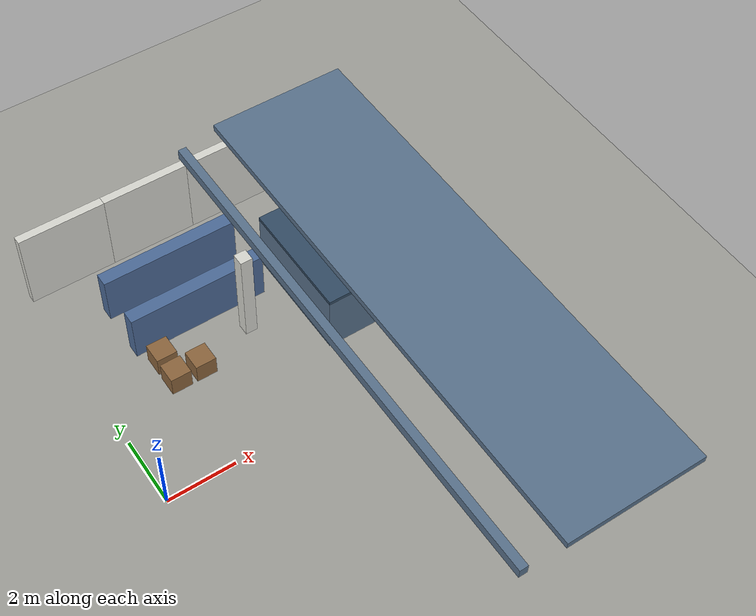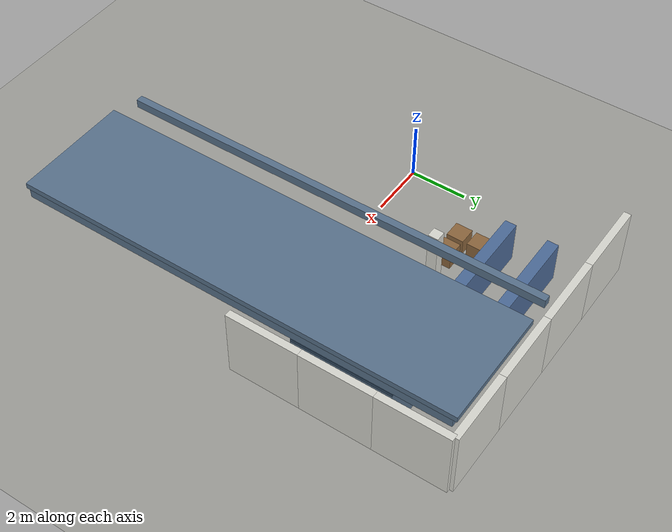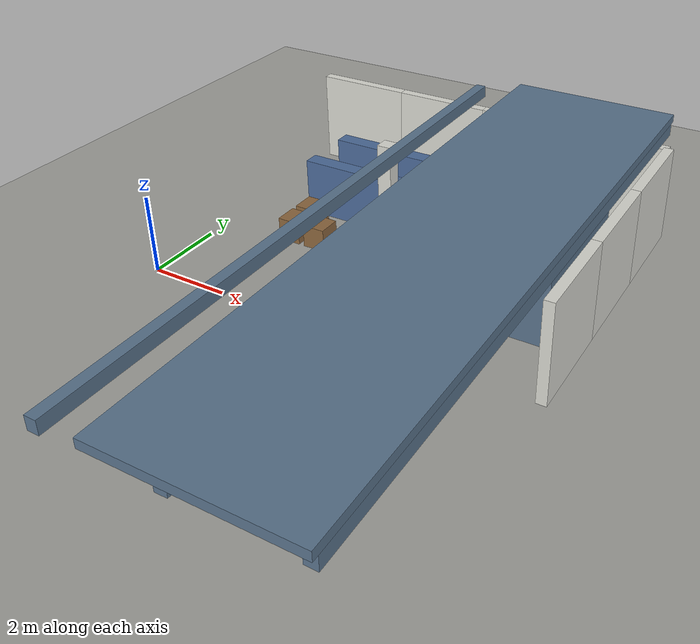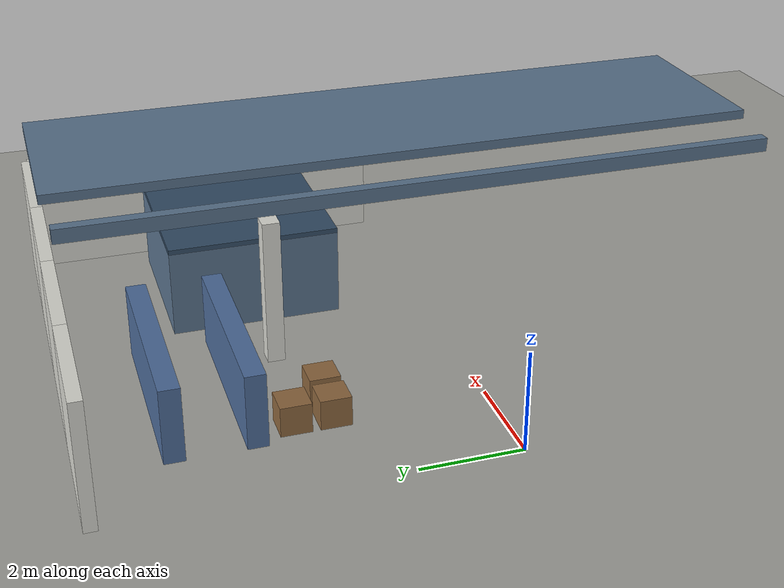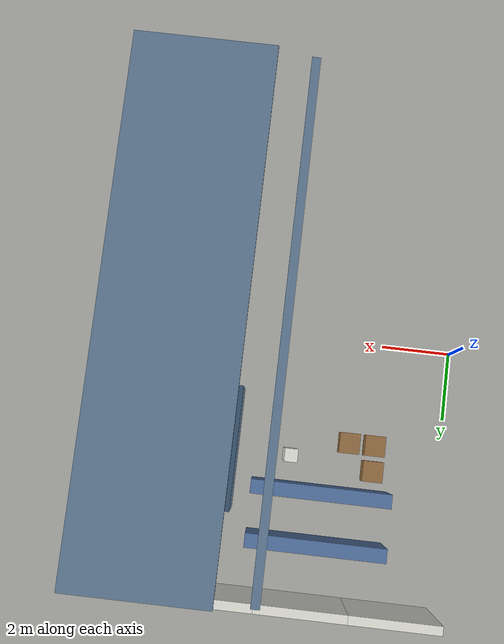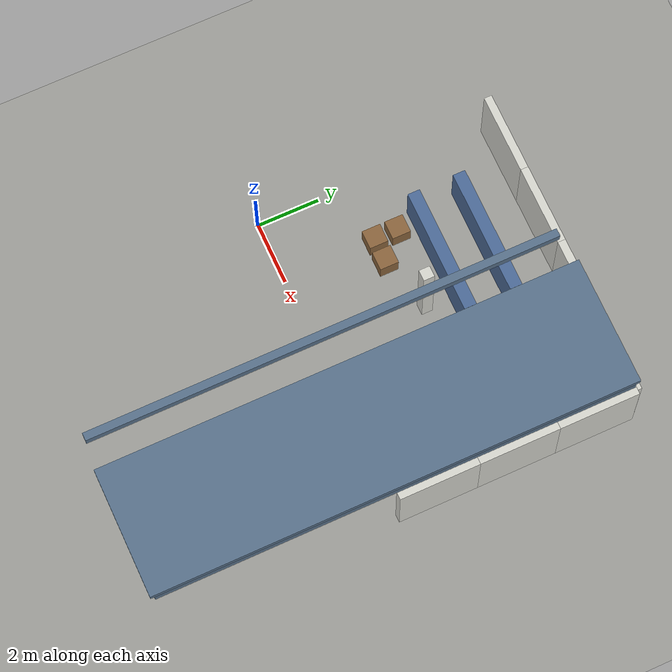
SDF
<sdf version="1.9">
 <world name="default">
  <model name="ground_plane">
   <static>true</static>
   <link name="link">
    <collision name="collision">
     <geometry><plane><normal>0 0 1</normal><size>200 200</size></plane></geometry>
     <surface><friction><ode><mu>1.0</mu><mu2>1.0</mu2></ode></friction></surface>
    </collision>
    <visual name="visual">
     <geometry><plane><normal>0 0 1</normal><size>200 200</size></plane></geometry>
     <material>
      <ambient>0.310 0.310 0.300 1</ambient>
      <diffuse>0.620 0.620 0.600 1</diffuse>
      <specular>0.05 0.05 0.05 1</specular>
      <pbr>
       <metal>
        <albedo_map>materials/textures/concrete.png</albedo_map>
        <metalness>0.0</metalness>
        <roughness>0.9</roughness>
       </metal>
      </pbr>
     </material>
    </visual>
   </link>
  </model>
  <model name="wall_north_4">
   <static>true</static>
   <pose>1.26562 7.62500 1.25000 0 0.000000 0</pose>
   <link name="link">
    <collision name="collision">
     <geometry><box><size>2.53125 0.25000 2.50000</size></box></geometry>
     <surface><friction><ode><mu>1.0</mu><mu2>1.0</mu2></ode></friction></surface>
    </collision>
    <visual name="visual">
     <geometry><box><size>2.53125 0.25000 2.50000</size></box></geometry>
     <material>
      <ambient>0.425 0.425 0.410 1</ambient>
      <diffuse>0.850 0.850 0.820 1</diffuse>
      <specular>0.1 0.1 0.1 1</specular>
      <pbr>
       <metal>
        <albedo_map>materials/textures/painted_wall.png</albedo_map>
        <metalness>0.0</metalness>
        <roughness>0.85</roughness>
       </metal>
      </pbr>
     </material>
    </visual>
   </link>
  </model>
  <model name="wall_north_5">
   <static>true</static>
   <pose>3.79688 7.62500 1.25000 0 0.000000 0</pose>
   <link name="link">
    <collision name="collision">
     <geometry><box><size>2.53125 0.25000 2.50000</size></box></geometry>
     <surface><friction><ode><mu>1.0</mu><mu2>1.0</mu2></ode></friction></surface>
    </collision>
    <visual name="visual">
     <geometry><box><size>2.53125 0.25000 2.50000</size></box></geometry>
     <material>
      <ambient>0.425 0.425 0.410 1</ambient>
      <diffuse>0.850 0.850 0.820 1</diffuse>
      <specular>0.1 0.1 0.1 1</specular>
      <pbr>
       <metal>
        <albedo_map>materials/textures/painted_wall.png</albedo_map>
        <metalness>0.0</metalness>
        <roughness>0.85</roughness>
       </metal>
      </pbr>
     </material>
    </visual>
   </link>
  </model>
  <model name="wall_north_6">
   <static>true</static>
   <pose>6.32812 7.62500 1.25000 0 0.000000 0</pose>
   <link name="link">
    <collision name="collision">
     <geometry><box><size>2.53125 0.25000 2.50000</size></box></geometry>
     <surface><friction><ode><mu>1.0</mu><mu2>1.0</mu2></ode></friction></surface>
    </collision>
    <visual name="visual">
     <geometry><box><size>2.53125 0.25000 2.50000</size></box></geometry>
     <material>
      <ambient>0.425 0.425 0.410 1</ambient>
      <diffuse>0.850 0.850 0.820 1</diffuse>
      <specular>0.1 0.1 0.1 1</specular>
      <pbr>
       <metal>
        <albedo_map>materials/textures/painted_wall.png</albedo_map>
        <metalness>0.0</metalness>
        <roughness>0.85</roughness>
       </metal>
      </pbr>
     </material>
    </visual>
   </link>
  </model>
  <model name="wall_north_7">
   <static>true</static>
   <pose>8.85938 7.62500 1.25000 0 0.000000 0</pose>
   <link name="link">
    <collision name="collision">
     <geometry><box><size>2.53125 0.25000 2.50000</size></box></geometry>
     <surface><friction><ode><mu>1.0</mu><mu2>1.0</mu2></ode></friction></surface>
    </collision>
    <visual name="visual">
     <geometry><box><size>2.53125 0.25000 2.50000</size></box></geometry>
     <material>
      <ambient>0.425 0.425 0.410 1</ambient>
      <diffuse>0.850 0.850 0.820 1</diffuse>
      <specular>0.1 0.1 0.1 1</specular>
      <pbr>
       <metal>
        <albedo_map>materials/textures/painted_wall.png</albedo_map>
        <metalness>0.0</metalness>
        <roughness>0.85</roughness>
       </metal>
      </pbr>
     </material>
    </visual>
   </link>
  </model>
  <model name="wall_east_3">
   <static>true</static>
   <pose>10.12500 1.27083 1.25000 0 0.000000 0</pose>
   <link name="link">
    <collision name="collision">
     <geometry><box><size>0.25000 2.54167 2.50000</size></box></geometry>
     <surface><friction><ode><mu>1.0</mu><mu2>1.0</mu2></ode></friction></surface>
    </collision>
    <visual name="visual">
     <geometry><box><size>0.25000 2.54167 2.50000</size></box></geometry>
     <material>
      <ambient>0.425 0.425 0.410 1</ambient>
      <diffuse>0.850 0.850 0.820 1</diffuse>
      <specular>0.1 0.1 0.1 1</specular>
      <pbr>
       <metal>
        <albedo_map>materials/textures/painted_wall.png</albedo_map>
        <metalness>0.0</metalness>
        <roughness>0.85</roughness>
       </metal>
      </pbr>
     </material>
    </visual>
   </link>
  </model>
  <model name="wall_east_4">
   <static>true</static>
   <pose>10.12500 3.81250 1.25000 0 0.000000 0</pose>
   <link name="link">
    <collision name="collision">
     <geometry><box><size>0.25000 2.54167 2.50000</size></box></geometry>
     <surface><friction><ode><mu>1.0</mu><mu2>1.0</mu2></ode></friction></surface>
    </collision>
    <visual name="visual">
     <geometry><box><size>0.25000 2.54167 2.50000</size></box></geometry>
     <material>
      <ambient>0.425 0.425 0.410 1</ambient>
      <diffuse>0.850 0.850 0.820 1</diffuse>
      <specular>0.1 0.1 0.1 1</specular>
      <pbr>
       <metal>
        <albedo_map>materials/textures/painted_wall.png</albedo_map>
        <metalness>0.0</metalness>
        <roughness>0.85</roughness>
       </metal>
      </pbr>
     </material>
    </visual>
   </link>
  </model>
  <model name="wall_east_5">
   <static>true</static>
   <pose>10.12500 6.35417 1.25000 0 0.000000 0</pose>
   <link name="link">
    <collision name="collision">
     <geometry><box><size>0.25000 2.54167 2.50000</size></box></geometry>
     <surface><friction><ode><mu>1.0</mu><mu2>1.0</mu2></ode></friction></surface>
    </collision>
    <visual name="visual">
     <geometry><box><size>0.25000 2.54167 2.50000</size></box></geometry>
     <material>
      <ambient>0.425 0.425 0.410 1</ambient>
      <diffuse>0.850 0.850 0.820 1</diffuse>
      <specular>0.1 0.1 0.1 1</specular>
      <pbr>
       <metal>
        <albedo_map>materials/textures/painted_wall.png</albedo_map>
        <metalness>0.0</metalness>
        <roughness>0.85</roughness>
       </metal>
      </pbr>
     </material>
    </visual>
   </link>
  </model>
  <model name="rack_n1b">
   <static>true</static>
   <pose>3.50000 4.50000 0.75000 0 0.000000 0</pose>
   <link name="link">
    <collision name="collision">
     <geometry><box><size>4.00000 0.40000 1.50000</size></box></geometry>
     <surface><friction><ode><mu>1.0</mu><mu2>1.0</mu2></ode></friction></surface>
    </collision>
    <visual name="visual">
     <geometry><box><size>4.00000 0.40000 1.50000</size></box></geometry>
     <material>
      <ambient>0.150 0.210 0.300 1</ambient>
      <diffuse>0.300 0.420 0.600 1</diffuse>
      <specular>0.1 0.1 0.1 1</specular>
      <pbr>
       <metal>
        <albedo_map>materials/textures/steel.png</albedo_map>
        <metalness>0.0</metalness>
        <roughness>0.85</roughness>
       </metal>
      </pbr>
     </material>
    </visual>
   </link>
  </model>
  <model name="rack_n2b">
   <static>true</static>
   <pose>3.50000 6.00000 0.75000 0 0.000000 0</pose>
   <link name="link">
    <collision name="collision">
     <geometry><box><size>4.00000 0.40000 1.50000</size></box></geometry>
     <surface><friction><ode><mu>1.0</mu><mu2>1.0</mu2></ode></friction></surface>
    </collision>
    <visual name="visual">
     <geometry><box><size>4.00000 0.40000 1.50000</size></box></geometry>
     <material>
      <ambient>0.150 0.210 0.300 1</ambient>
      <diffuse>0.300 0.420 0.600 1</diffuse>
      <specular>0.1 0.1 0.1 1</specular>
      <pbr>
       <metal>
        <albedo_map>materials/textures/steel.png</albedo_map>
        <metalness>0.0</metalness>
        <roughness>0.85</roughness>
       </metal>
      </pbr>
     </material>
    </visual>
   </link>
  </model>
  <model name="machine_ne">
   <static>true</static>
   <pose>7.75000 3.50000 0.90000 0 0.000000 0</pose>
   <link name="link">
    <collision name="collision">
     <geometry><box><size>3.50000 3.50000 1.80000</size></box></geometry>
     <surface><friction><ode><mu>1.0</mu><mu2>1.0</mu2></ode></friction></surface>
    </collision>
    <visual name="visual">
     <geometry><box><size>3.50000 3.50000 1.80000</size></box></geometry>
     <material>
      <ambient>0.175 0.225 0.275 1</ambient>
      <diffuse>0.350 0.450 0.550 1</diffuse>
      <specular>0.1 0.1 0.1 1</specular>
      <pbr>
       <metal>
        <albedo_map>materials/textures/steel.png</albedo_map>
        <metalness>0.0</metalness>
        <roughness>0.85</roughness>
       </metal>
      </pbr>
     </material>
    </visual>
   </link>
  </model>
  <model name="machine_ne_panel">
   <static>true</static>
   <pose>7.75000 3.50000 1.85000 0 0.000000 0</pose>
   <link name="link">
    <collision name="collision">
     <geometry><box><size>3.50000 3.50000 0.10000</size></box></geometry>
     <surface><friction><ode><mu>1.0</mu><mu2>1.0</mu2></ode></friction></surface>
    </collision>
    <visual name="visual">
     <geometry><box><size>3.50000 3.50000 0.10000</size></box></geometry>
     <material>
      <ambient>0.100 0.150 0.200 1</ambient>
      <diffuse>0.200 0.300 0.400 1</diffuse>
      <specular>0.1 0.1 0.1 1</specular>
     </material>
    </visual>
   </link>
  </model>
  <model name="pillar_ne">
   <static>true</static>
   <pose>4.50000 3.50000 1.50000 0 0.000000 0</pose>
   <link name="link">
    <collision name="collision">
     <geometry><box><size>0.35000 0.35000 3.00000</size></box></geometry>
     <surface><friction><ode><mu>1.0</mu><mu2>1.0</mu2></ode></friction></surface>
    </collision>
    <visual name="visual">
     <geometry><box><size>0.35000 0.35000 3.00000</size></box></geometry>
     <material>
      <ambient>0.425 0.425 0.410 1</ambient>
      <diffuse>0.850 0.850 0.820 1</diffuse>
      <specular>0.1 0.1 0.1 1</specular>
      <pbr>
       <metal>
        <albedo_map>materials/textures/painted_wall.png</albedo_map>
        <metalness>0.0</metalness>
        <roughness>0.85</roughness>
       </metal>
      </pbr>
     </material>
    </visual>
   </link>
  </model>
  <model name="crate_n1">
   <static>true</static>
   <pose>2.00000 3.00000 0.30000 0 0.000000 0</pose>
   <link name="link">
    <collision name="collision">
     <geometry><box><size>0.60000 0.60000 0.60000</size></box></geometry>
     <surface><friction><ode><mu>1.0</mu><mu2>1.0</mu2></ode></friction></surface>
    </collision>
    <visual name="visual">
     <geometry><box><size>0.60000 0.60000 0.60000</size></box></geometry>
     <material>
      <ambient>0.275 0.200 0.120 1</ambient>
      <diffuse>0.550 0.400 0.240 1</diffuse>
      <specular>0.1 0.1 0.1 1</specular>
      <pbr>
       <metal>
        <albedo_map>materials/textures/crate.png</albedo_map>
        <metalness>0.0</metalness>
        <roughness>0.85</roughness>
       </metal>
      </pbr>
     </material>
    </visual>
   </link>
  </model>
  <model name="crate_n2">
   <static>true</static>
   <pose>2.75000 3.00000 0.30000 0 0.000000 0</pose>
   <link name="link">
    <collision name="collision">
     <geometry><box><size>0.60000 0.60000 0.60000</size></box></geometry>
     <surface><friction><ode><mu>1.0</mu><mu2>1.0</mu2></ode></friction></surface>
    </collision>
    <visual name="visual">
     <geometry><box><size>0.60000 0.60000 0.60000</size></box></geometry>
     <material>
      <ambient>0.275 0.200 0.120 1</ambient>
      <diffuse>0.550 0.400 0.240 1</diffuse>
      <specular>0.1 0.1 0.1 1</specular>
      <pbr>
       <metal>
        <albedo_map>materials/textures/crate.png</albedo_map>
        <metalness>0.0</metalness>
        <roughness>0.85</roughness>
       </metal>
      </pbr>
     </material>
    </visual>
   </link>
  </model>
  <model name="crate_n3">
   <static>true</static>
   <pose>2.00000 3.75000 0.30000 0 0.000000 0</pose>
   <link name="link">
    <collision name="collision">
     <geometry><box><size>0.60000 0.60000 0.60000</size></box></geometry>
     <surface><friction><ode><mu>1.0</mu><mu2>1.0</mu2></ode></friction></surface>
    </collision>
    <visual name="visual">
     <geometry><box><size>0.60000 0.60000 0.60000</size></box></geometry>
     <material>
      <ambient>0.275 0.200 0.120 1</ambient>
      <diffuse>0.550 0.400 0.240 1</diffuse>
      <specular>0.1 0.1 0.1 1</specular>
      <pbr>
       <metal>
        <albedo_map>materials/textures/crate.png</albedo_map>
        <metalness>0.0</metalness>
        <roughness>0.85</roughness>
       </metal>
      </pbr>
     </material>
    </visual>
   </link>
  </model>
  <model name="roof_4">
   <static>true</static>
   <pose>8.10000 0.00000 3.30000 0 0.000000 0</pose>
   <link name="link">
    <collision name="collision">
     <geometry><box><size>4.05000 15.25000 0.20000</size></box></geometry>
     <surface><friction><ode><mu>1.0</mu><mu2>1.0</mu2></ode></friction></surface>
    </collision>
    <visual name="visual">
     <geometry><box><size>4.05000 15.25000 0.20000</size></box></geometry>
     <material>
      <ambient>0.175 0.225 0.275 1</ambient>
      <diffuse>0.350 0.450 0.550 1</diffuse>
      <specular>0.1 0.1 0.1 1</specular>
      <pbr>
       <metal>
        <albedo_map>materials/textures/steel.png</albedo_map>
        <metalness>0.0</metalness>
        <roughness>0.85</roughness>
       </metal>
      </pbr>
     </material>
    </visual>
   </link>
  </model>
  <model name="truss_6">
   <static>true</static>
   <pose>5.00000 0.00000 3.05000 0 0.000000 0</pose>
   <link name="link">
    <collision name="collision">
     <geometry><box><size>0.25000 15.00000 0.30000</size></box></geometry>
     <surface><friction><ode><mu>1.0</mu><mu2>1.0</mu2></ode></friction></surface>
    </collision>
    <visual name="visual">
     <geometry><box><size>0.25000 15.00000 0.30000</size></box></geometry>
     <material>
      <ambient>0.175 0.225 0.275 1</ambient>
      <diffuse>0.350 0.450 0.550 1</diffuse>
      <specular>0.1 0.1 0.1 1</specular>
      <pbr>
       <metal>
        <albedo_map>materials/textures/steel.png</albedo_map>
        <metalness>0.0</metalness>
        <roughness>0.85</roughness>
       </metal>
      </pbr>
     </material>
    </visual>
   </link>
  </model>
  <model name="truss_7">
   <static>true</static>
   <pose>7.50000 0.00000 3.05000 0 0.000000 0</pose>
   <link name="link">
    <collision name="collision">
     <geometry><box><size>0.25000 15.00000 0.30000</size></box></geometry>
     <surface><friction><ode><mu>1.0</mu><mu2>1.0</mu2></ode></friction></surface>
    </collision>
    <visual name="visual">
     <geometry><box><size>0.25000 15.00000 0.30000</size></box></geometry>
     <material>
      <ambient>0.175 0.225 0.275 1</ambient>
      <diffuse>0.350 0.450 0.550 1</diffuse>
      <specular>0.1 0.1 0.1 1</specular>
      <pbr>
       <metal>
        <albedo_map>materials/textures/steel.png</albedo_map>
        <metalness>0.0</metalness>
        <roughness>0.85</roughness>
       </metal>
      </pbr>
     </material>
    </visual>
   </link>
  </model>
  <model name="truss_8">
   <static>true</static>
   <pose>10.00000 0.00000 3.05000 0 0.000000 0</pose>
   <link name="link">
    <collision name="collision">
     <geometry><box><size>0.25000 15.00000 0.30000</size></box></geometry>
     <surface><friction><ode><mu>1.0</mu><mu2>1.0</mu2></ode></friction></surface>
    </collision>
    <visual name="visual">
     <geometry><box><size>0.25000 15.00000 0.30000</size></box></geometry>
     <material>
      <ambient>0.175 0.225 0.275 1</ambient>
      <diffuse>0.350 0.450 0.550 1</diffuse>
      <specular>0.1 0.1 0.1 1</specular>
      <pbr>
       <metal>
        <albedo_map>materials/textures/steel.png</albedo_map>
        <metalness>0.0</metalness>
        <roughness>0.85</roughness>
       </metal>
      </pbr>
     </material>
    </visual>
   </link>
  </model>
 </world>
</sdf>
